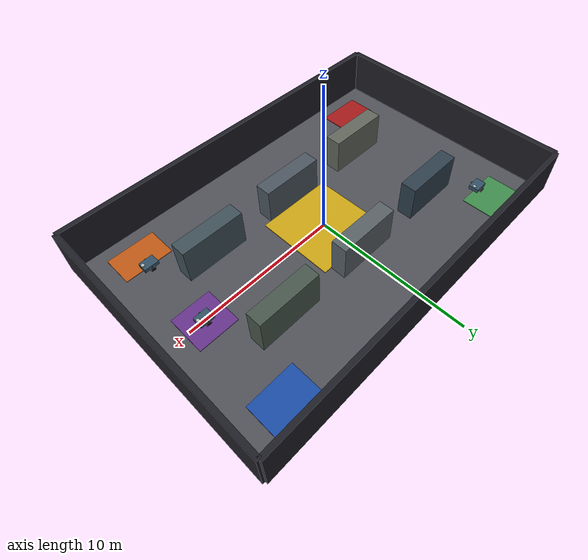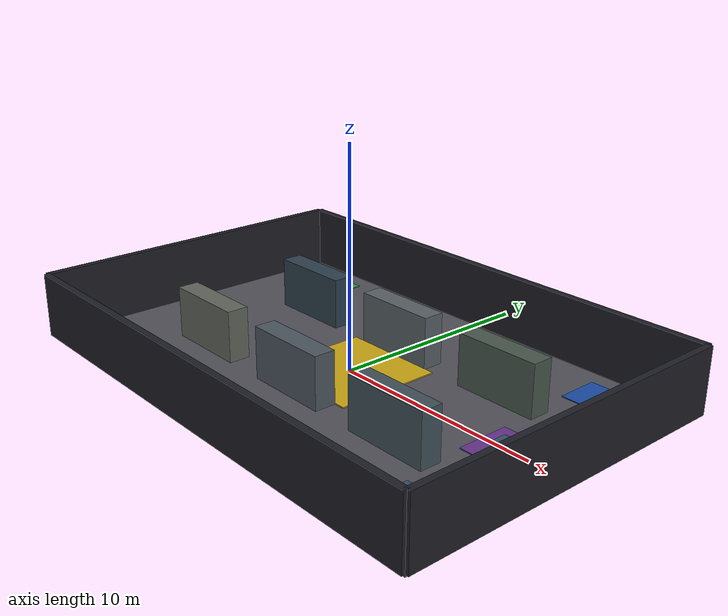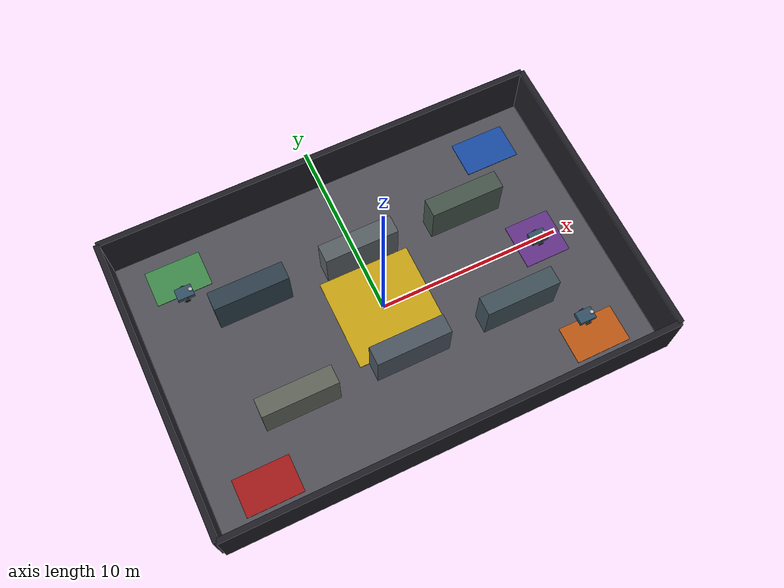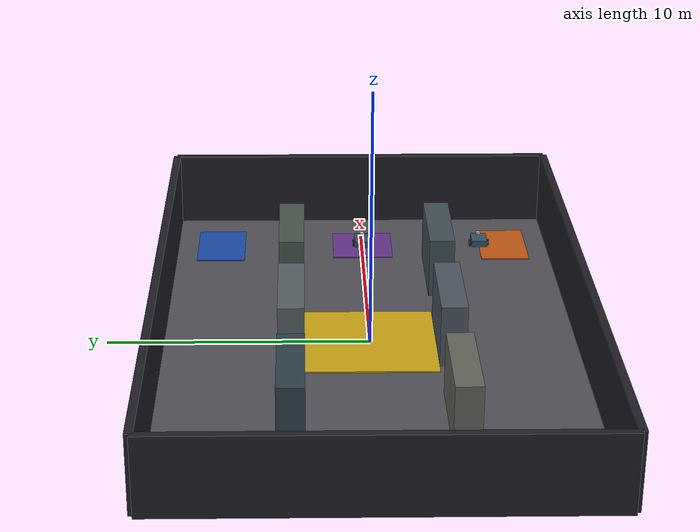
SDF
<?xml version="1.0"?>
<sdf version="1.9">

  <world name="synaids_advanced_warehouse">
    <plugin filename="gz-sim-sensors-system"
            name="gz::sim::systems::Sensors">
    </plugin>

    <gravity>0 0 -9.81</gravity>

    <physics name="default_physics" type="ignored">
      <max_step_size>0.001</max_step_size>
      <real_time_factor>1</real_time_factor>
      <real_time_update_rate>1000</real_time_update_rate>
    </physics>

    <plugin filename="gz-sim-physics-system"
            name="gz::sim::systems::Physics"/>

    <plugin filename="gz-sim-user-commands-system"
            name="gz::sim::systems::UserCommands"/>

    <plugin filename="gz-sim-scene-broadcaster-system"
            name="gz::sim::systems::SceneBroadcaster"/>

    <!-- FLOOR -->

    <model name="warehouse_floor">
      <static>true</static>
      <pose>0 0 -0.05 0 0 0</pose>

      <link name="link">

        <collision name="collision">
          <geometry>
            <box>
              <size>24 16 0.1</size>
            </box>
          </geometry>
        </collision>

        <visual name="visual">
          <geometry>
            <box>
              <size>24 16 0.1</size>
            </box>
          </geometry>

          <material>
            <ambient>0.20 0.20 0.22 1</ambient>
            <diffuse>0.32 0.32 0.35 1</diffuse>
            <specular>0.15 0.15 0.15 1</specular>
          </material>
        </visual>

      </link>
    </model>

    <!-- PERIMETER WALLS -->

    <model name="wall_north">
      <static>true</static>
      <pose>0 8 1.5 0 0 0</pose>
      <link name="link">
        <collision name="collision">
          <geometry>
            <box><size>24 0.3 3</size></box>
          </geometry>
        </collision>
        <visual name="visual">
          <geometry>
            <box><size>24 0.3 3</size></box>
          </geometry>
          <material>
            <ambient>0.08 0.08 0.10 1</ambient>
            <diffuse>0.12 0.12 0.15 1</diffuse>
          </material>
        </visual>
      </link>
    </model>

    <model name="wall_south">
      <static>true</static>
      <pose>0 -8 1.5 0 0 0</pose>
      <link name="link">
        <collision name="collision">
          <geometry>
            <box><size>24 0.3 3</size></box>
          </geometry>
        </collision>
        <visual name="visual">
          <geometry>
            <box><size>24 0.3 3</size></box>
          </geometry>
          <material>
            <ambient>0.08 0.08 0.10 1</ambient>
            <diffuse>0.12 0.12 0.15 1</diffuse>
          </material>
        </visual>
      </link>
    </model>

    <model name="wall_east">
      <static>true</static>
      <pose>12 0 1.5 0 0 0</pose>
      <link name="link">
        <collision name="collision">
          <geometry>
            <box><size>0.3 16 3</size></box>
          </geometry>
        </collision>
        <visual name="visual">
          <geometry>
            <box><size>0.3 16 3</size></box>
          </geometry>
          <material>
            <ambient>0.08 0.08 0.10 1</ambient>
            <diffuse>0.12 0.12 0.15 1</diffuse>
          </material>
        </visual>
      </link>
    </model>

    <model name="wall_west">
      <static>true</static>
      <pose>-12 0 1.5 0 0 0</pose>
      <link name="link">
        <collision name="collision">
          <geometry>
            <box><size>0.3 16 3</size></box>
          </geometry>
        </collision>
        <visual name="visual">
          <geometry>
            <box><size>0.3 16 3</size></box>
          </geometry>
          <material>
            <ambient>0.08 0.08 0.10 1</ambient>
            <diffuse>0.12 0.12 0.15 1</diffuse>
          </material>
        </visual>
      </link>
    </model>

    <!-- SHELF BLOCK 1 -->

    <model name="shelf_1">
      <static>true</static>
      <pose>-6 3 1.2 0 0 0</pose>
      <link name="link">

        <collision name="collision">
          <geometry>
            <box><size>4 1.0 2.4</size></box>
          </geometry>
        </collision>

        <visual name="visual">
          <geometry>
            <box><size>4 1.0 2.4</size></box>
          </geometry>
          <material>
            <ambient>0.08 0.12 0.16 1</ambient>
            <diffuse>0.18 0.25 0.30 1</diffuse>
          </material>
        </visual>

      </link>
    </model>

    <!-- SHELF BLOCK 2 -->

    <model name="shelf_2">
      <static>true</static>
      <pose>0 3 1.2 0 0 0</pose>
      <link name="link">

        <collision name="collision">
          <geometry>
            <box><size>4 1.0 2.4</size></box>
          </geometry>
        </collision>

        <visual name="visual">
          <geometry>
            <box><size>4 1.0 2.4</size></box>
          </geometry>
          <material>
            <ambient>0.18 0.18 0.18 1</ambient>
            <diffuse>0.35 0.38 0.40 1</diffuse>
          </material>
        </visual>

      </link>
    </model>

    <!-- SHELF BLOCK 3 -->

    <model name="shelf_3">
      <static>true</static>
      <pose>6 3 1.2 0 0 0</pose>
      <link name="link">

        <collision name="collision">
          <geometry>
            <box><size>4 1.0 2.4</size></box>
          </geometry>
        </collision>

        <visual name="visual">
          <geometry>
            <box><size>4 1.0 2.4</size></box>
          </geometry>
          <material>
            <ambient>0.12 0.16 0.14 1</ambient>
            <diffuse>0.28 0.34 0.30 1</diffuse>
          </material>
        </visual>

      </link>
    </model>

    <!-- SHELF BLOCK 4 -->

    <model name="shelf_4">
      <static>true</static>
      <pose>-6 -3 1.2 0 0 0</pose>
      <link name="link">

        <collision name="collision">
          <geometry>
            <box><size>4 1.0 2.4</size></box>
          </geometry>
        </collision>

        <visual name="visual">
          <geometry>
            <box><size>4 1.0 2.4</size></box>
          </geometry>
          <material>
            <ambient>0.20 0.20 0.18 1</ambient>
            <diffuse>0.38 0.40 0.36 1</diffuse>
          </material>
        </visual>

      </link>
    </model>

    <!-- SHELF BLOCK 5 -->

    <model name="shelf_5">
      <static>true</static>
      <pose>0 -3 1.2 0 0 0</pose>
      <link name="link">

        <collision name="collision">
          <geometry>
            <box><size>4 1.0 2.4</size></box>
          </geometry>
        </collision>

        <visual name="visual">
          <geometry>
            <box><size>4 1.0 2.4</size></box>
          </geometry>
          <material>
            <ambient>0.16 0.18 0.20 1</ambient>
            <diffuse>0.30 0.34 0.38 1</diffuse>
          </material>
        </visual>

      </link>
    </model>

    <!-- SHELF BLOCK 6 -->

    <model name="shelf_6">
      <static>true</static>
      <pose>6 -3 1.2 0 0 0</pose>
      <link name="link">

        <collision name="collision">
          <geometry>
            <box><size>4 1.0 2.4</size></box>
          </geometry>
        </collision>

        <visual name="visual">
          <geometry>
            <box><size>4 1.0 2.4</size></box>
          </geometry>
          <material>
            <ambient>0.12 0.18 0.20 1</ambient>
            <diffuse>0.25 0.32 0.35 1</diffuse>
          </material>
        </visual>

      </link>
    </model>

    <!-- PICKUP ZONE - GREEN -->

    <model name="pickup_zone">
      <static>true</static>
      <pose>-9 6 0.02 0 0 0</pose>
      <link name="link">
        <visual name="visual">
          <geometry>
            <box><size>3 2 0.04</size></box>
          </geometry>
          <material>
            <ambient>0.08 0.25 0.10 1</ambient>
            <diffuse>0.25 0.55 0.30 1</diffuse>
          </material>
        </visual>
      </link>
    </model>

    <!-- DELIVERY ZONE - ORANGE -->

    <model name="delivery_zone">
      <static>true</static>
      <pose>9 -6 0.02 0 0 0</pose>
      <link name="link">
        <visual name="visual">
          <geometry>
            <box><size>3 2 0.04</size></box>
          </geometry>
          <material>
            <ambient>0.35 0.16 0.03 1</ambient>
            <diffuse>0.75 0.35 0.08 1</diffuse>
          </material>
        </visual>
      </link>
    </model>

    <!-- CHARGING STATION - BLUE -->

    <model name="charging_station">
      <static>true</static>
      <pose>9 6 0.02 0 0 0</pose>
      <link name="link">
        <visual name="visual">
          <geometry>
            <box><size>3 2 0.04</size></box>
          </geometry>
          <material>
            <ambient>0.05 0.15 0.35 1</ambient>
            <diffuse>0.10 0.30 0.65 1</diffuse>
          </material>
        </visual>
      </link>
    </model>

    <!-- RESTRICTED ZONE - RED -->

    <model name="restricted_zone">
      <static>true</static>
      <pose>-9 -6 0.02 0 0 0</pose>
      <link name="link">
        <visual name="visual">
          <geometry>
            <box><size>3 2 0.04</size></box>
          </geometry>
          <material>
            <ambient>0.35 0.04 0.04 1</ambient>
            <diffuse>0.65 0.10 0.10 1</diffuse>
          </material>
        </visual>
      </link>
    </model>

    <!-- CENTRAL SAFETY CROSSING -->

    <model name="central_intersection">
      <static>true</static>
      <pose>0 0 0.025 0 0 0</pose>
      <link name="link">
        <visual name="visual">
          <geometry>
            <box><size>5 5 0.05</size></box>
          </geometry>
          <material>
            <ambient>0.45 0.38 0.03 1</ambient>
            <diffuse>0.80 0.65 0.08 1</diffuse>
          </material>
        </visual>
      </link>
    </model>

    <!-- MAINTENANCE AREA - PURPLE -->

    <model name="maintenance_area">
      <static>true</static>
      <pose>9 0 0.02 0 0 0</pose>
      <link name="link">
        <visual name="visual">
          <geometry>
            <box><size>2.5 2.5 0.04</size></box>
          </geometry>
          <material>
            <ambient>0.18 0.08 0.25 1</ambient>
            <diffuse>0.40 0.20 0.55 1</diffuse>
          </material>
        </visual>
      </link>
    </model>

    <!-- LIGHTING -->

    <light name="warehouse_light_1" type="directional">
      <pose>0 0 10 0 0 0</pose>
      <diffuse>1 1 1 1</diffuse>
      <specular>0.3 0.3 0.3 1</specular>
      <direction>-0.3 0.2 -1</direction>
    </light>

    <light name="warehouse_light_2" type="point">
      <pose>-6 0 6 0 0 0</pose>
      <diffuse>0.8 0.9 1.0 1</diffuse>
      <specular>0.2 0.2 0.2 1</specular>
      <attenuation>
        <range>15</range>
        <constant>0.5</constant>
        <linear>0.01</linear>
        <quadratic>0.001</quadratic>
      </attenuation>
    </light>

    <light name="warehouse_light_3" type="point">
      <pose>6 0 6 0 0 0</pose>
      <diffuse>1.0 0.8 0.6 1</diffuse>
      <specular>0.2 0.2 0.2 1</specular>
      <attenuation>
        <range>15</range>
        <constant>0.5</constant>
        <linear>0.01</linear>
        <quadratic>0.001</quadratic>
      </attenuation>
    </light>

  <model name="R1">

    <pose>-9 5 0.25 0 0 0</pose>

    <!-- Main chassis -->
    <link name="base_link">

      <inertial>
        <mass>12</mass>
        <inertia>
          <ixx>0.5</ixx>
          <iyy>0.5</iyy>
          <izz>0.5</izz>
        </inertia>
      </inertial>

      <collision name="base_collision">
        <geometry>
          <box>
            <size>0.9 0.65 0.25</size>
          </box>
        </geometry>
      </collision>

      <visual name="base_visual">
        <geometry>
          <box>
            <size>0.9 0.65 0.25</size>
          </box>
        </geometry>

        <material>
          <ambient>0.10 0.16 0.20 1</ambient>
          <diffuse>0.20 0.32 0.40 1</diffuse>
        </material>
      </visual>

    </link>

    <!-- Left wheel -->
    <link name="left_wheel">

      <pose>0 0.38 -0.12 1.5708 0 0</pose>

      <inertial>
        <mass>1</mass>
        <inertia>
          <ixx>0.02</ixx>
          <iyy>0.02</iyy>
          <izz>0.02</izz>
        </inertia>
      </inertial>

      <collision name="collision">
        <geometry>
          <cylinder>
            <radius>0.16</radius>
            <length>0.08</length>
          </cylinder>
        </geometry>
      </collision>

      <visual name="visual">
        <geometry>
          <cylinder>
            <radius>0.16</radius>
            <length>0.08</length>
          </cylinder>
        </geometry>

        <material>
          <ambient>0.03 0.03 0.03 1</ambient>
          <diffuse>0.08 0.08 0.08 1</diffuse>
        </material>
      </visual>

    </link>

    <!-- Right wheel -->
    <link name="right_wheel">

      <pose>0 -0.38 -0.12 1.5708 0 0</pose>

      <inertial>
        <mass>1</mass>
        <inertia>
          <ixx>0.02</ixx>
          <iyy>0.02</iyy>
          <izz>0.02</izz>
        </inertia>
      </inertial>

      <collision name="collision">
        <geometry>
          <cylinder>
            <radius>0.16</radius>
            <length>0.08</length>
          </cylinder>
        </geometry>
      </collision>

      <visual name="visual">
        <geometry>
          <cylinder>
            <radius>0.16</radius>
            <length>0.08</length>
          </cylinder>
        </geometry>

        <material>
          <ambient>0.03 0.03 0.03 1</ambient>
          <diffuse>0.08 0.08 0.08 1</diffuse>
        </material>
      </visual>

    </link>

    <!-- Front sensor housing -->
    <link name="sensor">

      <pose>0.35 0 0.18 0 0 0</pose>

      <visual name="visual">
        <geometry>
          <cylinder>
            <radius>0.10</radius>
            <length>0.08</length>
          </cylinder>
        </geometry>

        <material>
          <ambient>0.65 0.65 0.65 1</ambient>
          <diffuse>0.75 0.75 0.75 1</diffuse>
        </material>
      </visual>

    </link>

    <!-- Differential drive -->
    <plugin
      filename="gz-sim-diff-drive-system"
      name="gz::sim::systems::DiffDrive">

      <left_joint>left_wheel_joint</left_joint>
      <right_joint>right_wheel_joint</right_joint>

      <wheel_separation>0.76</wheel_separation>
      <wheel_radius>0.16</wheel_radius>

      <topic>/R1/cmd_vel</topic>
      <odom_topic>/R1/odom</odom_topic>

      <frame_id>odom</frame_id>
      <child_frame_id>base_link</child_frame_id>

    </plugin>

    <!-- Lidar -->
    <link name="lidar">

      <pose>0 0 0.35 0 0 0</pose>

      <sensor name="lidar_sensor" type="gpu_lidar">

        <topic>/R1/scan</topic>

        <update_rate>10</update_rate>

        <lidar>
          <scan>
            <horizontal>
              <samples>360</samples>
              <resolution>1</resolution>
              <min_angle>-3.14159</min_angle>
              <max_angle>3.14159</max_angle>
            </horizontal>
          </scan>

          <range>
            <min>0.12</min>
            <max>12</max>
            <resolution>0.01</resolution>
          </range>
        </lidar>

      </sensor>

    </link>

    <!-- Wheel joints -->
    <joint name="left_wheel_joint" type="revolute">
      <parent>base_link</parent>
      <child>left_wheel</child>
      <axis>
        <xyz>0 1 0</xyz>
      </axis>
    </joint>

    <joint name="right_wheel_joint" type="revolute">
      <parent>base_link</parent>
      <child>right_wheel</child>
      <axis>
        <xyz>0 1 0</xyz>
      </axis>
    </joint>

  </model>
<model name="R2">

    <pose>9 0 0.25 0 0 0</pose>

    <!-- Main chassis -->
    <link name="base_link">

      <inertial>
        <mass>12</mass>
        <inertia>
          <ixx>0.5</ixx>
          <iyy>0.5</iyy>
          <izz>0.5</izz>
        </inertia>
      </inertial>

      <collision name="base_collision">
        <geometry>
          <box>
            <size>0.9 0.65 0.25</size>
          </box>
        </geometry>
      </collision>

      <visual name="base_visual">
        <geometry>
          <box>
            <size>0.9 0.65 0.25</size>
          </box>
        </geometry>

        <material>
          <ambient>0.10 0.16 0.20 1</ambient>
          <diffuse>0.20 0.32 0.40 1</diffuse>
        </material>
      </visual>

    </link>

    <!-- Left wheel -->
    <link name="left_wheel">

      <pose>0 0.38 -0.12 1.5708 0 0</pose>

      <inertial>
        <mass>1</mass>
        <inertia>
          <ixx>0.02</ixx>
          <iyy>0.02</iyy>
          <izz>0.02</izz>
        </inertia>
      </inertial>

      <collision name="collision">
        <geometry>
          <cylinder>
            <radius>0.16</radius>
            <length>0.08</length>
          </cylinder>
        </geometry>
      </collision>

      <visual name="visual">
        <geometry>
          <cylinder>
            <radius>0.16</radius>
            <length>0.08</length>
          </cylinder>
        </geometry>

        <material>
          <ambient>0.03 0.03 0.03 1</ambient>
          <diffuse>0.08 0.08 0.08 1</diffuse>
        </material>
      </visual>

    </link>

    <!-- Right wheel -->
    <link name="right_wheel">

      <pose>0 -0.38 -0.12 1.5708 0 0</pose>

      <inertial>
        <mass>1</mass>
        <inertia>
          <ixx>0.02</ixx>
          <iyy>0.02</iyy>
          <izz>0.02</izz>
        </inertia>
      </inertial>

      <collision name="collision">
        <geometry>
          <cylinder>
            <radius>0.16</radius>
            <length>0.08</length>
          </cylinder>
        </geometry>
      </collision>

      <visual name="visual">
        <geometry>
          <cylinder>
            <radius>0.16</radius>
            <length>0.08</length>
          </cylinder>
        </geometry>

        <material>
          <ambient>0.03 0.03 0.03 1</ambient>
          <diffuse>0.08 0.08 0.08 1</diffuse>
        </material>
      </visual>

    </link>

    <!-- Front sensor housing -->
    <link name="sensor">

      <pose>0.35 0 0.18 0 0 0</pose>

      <visual name="visual">
        <geometry>
          <cylinder>
            <radius>0.10</radius>
            <length>0.08</length>
          </cylinder>
        </geometry>

        <material>
          <ambient>0.65 0.65 0.65 1</ambient>
          <diffuse>0.75 0.75 0.75 1</diffuse>
        </material>
      </visual>

    </link>

    <!-- Differential drive -->
    <plugin
      filename="gz-sim-diff-drive-system"
      name="gz::sim::systems::DiffDrive">

      <left_joint>left_wheel_joint</left_joint>
      <right_joint>right_wheel_joint</right_joint>

      <wheel_separation>0.76</wheel_separation>
      <wheel_radius>0.16</wheel_radius>

      <topic>/R2/cmd_vel</topic>
      <odom_topic>/R2/odom</odom_topic>

      <frame_id>odom</frame_id>
      <child_frame_id>base_link</child_frame_id>

    </plugin>

    <!-- Lidar -->
    <link name="lidar">

      <pose>0 0 0.35 0 0 0</pose>

      <sensor name="lidar_sensor" type="gpu_lidar">

        <topic>/R2/scan</topic>

        <update_rate>10</update_rate>

        <lidar>
          <scan>
            <horizontal>
              <samples>360</samples>
              <resolution>1</resolution>
              <min_angle>-3.14159</min_angle>
              <max_angle>3.14159</max_angle>
            </horizontal>
          </scan>

          <range>
            <min>0.12</min>
            <max>12</max>
            <resolution>0.01</resolution>
          </range>
        </lidar>

      </sensor>

    </link>

    <!-- Wheel joints -->
    <joint name="left_wheel_joint" type="revolute">
      <parent>base_link</parent>
      <child>left_wheel</child>
      <axis>
        <xyz>0 1 0</xyz>
      </axis>
    </joint>

    <joint name="right_wheel_joint" type="revolute">
      <parent>base_link</parent>
      <child>right_wheel</child>
      <axis>
        <xyz>0 1 0</xyz>
      </axis>
    </joint>

  </model>
<model name="R3">

    <pose>9 -5 0.25 0 0 0</pose>

    <!-- Main chassis -->
    <link name="base_link">

      <inertial>
        <mass>12</mass>
        <inertia>
          <ixx>0.5</ixx>
          <iyy>0.5</iyy>
          <izz>0.5</izz>
        </inertia>
      </inertial>

      <collision name="base_collision">
        <geometry>
          <box>
            <size>0.9 0.65 0.25</size>
          </box>
        </geometry>
      </collision>

      <visual name="base_visual">
        <geometry>
          <box>
            <size>0.9 0.65 0.25</size>
          </box>
        </geometry>

        <material>
          <ambient>0.10 0.16 0.20 1</ambient>
          <diffuse>0.20 0.32 0.40 1</diffuse>
        </material>
      </visual>

    </link>

    <!-- Left wheel -->
    <link name="left_wheel">

      <pose>0 0.38 -0.12 1.5708 0 0</pose>

      <inertial>
        <mass>1</mass>
        <inertia>
          <ixx>0.02</ixx>
          <iyy>0.02</iyy>
          <izz>0.02</izz>
        </inertia>
      </inertial>

      <collision name="collision">
        <geometry>
          <cylinder>
            <radius>0.16</radius>
            <length>0.08</length>
          </cylinder>
        </geometry>
      </collision>

      <visual name="visual">
        <geometry>
          <cylinder>
            <radius>0.16</radius>
            <length>0.08</length>
          </cylinder>
        </geometry>

        <material>
          <ambient>0.03 0.03 0.03 1</ambient>
          <diffuse>0.08 0.08 0.08 1</diffuse>
        </material>
      </visual>

    </link>

    <!-- Right wheel -->
    <link name="right_wheel">

      <pose>0 -0.38 -0.12 1.5708 0 0</pose>

      <inertial>
        <mass>1</mass>
        <inertia>
          <ixx>0.02</ixx>
          <iyy>0.02</iyy>
          <izz>0.02</izz>
        </inertia>
      </inertial>

      <collision name="collision">
        <geometry>
          <cylinder>
            <radius>0.16</radius>
            <length>0.08</length>
          </cylinder>
        </geometry>
      </collision>

      <visual name="visual">
        <geometry>
          <cylinder>
            <radius>0.16</radius>
            <length>0.08</length>
          </cylinder>
        </geometry>

        <material>
          <ambient>0.03 0.03 0.03 1</ambient>
          <diffuse>0.08 0.08 0.08 1</diffuse>
        </material>
      </visual>

    </link>

    <!-- Front sensor housing -->
    <link name="sensor">

      <pose>0.35 0 0.18 0 0 0</pose>

      <visual name="visual">
        <geometry>
          <cylinder>
            <radius>0.10</radius>
            <length>0.08</length>
          </cylinder>
        </geometry>

        <material>
          <ambient>0.65 0.65 0.65 1</ambient>
          <diffuse>0.75 0.75 0.75 1</diffuse>
        </material>
      </visual>

    </link>

    <!-- Differential drive -->
    <plugin
      filename="gz-sim-diff-drive-system"
      name="gz::sim::systems::DiffDrive">

      <left_joint>left_wheel_joint</left_joint>
      <right_joint>right_wheel_joint</right_joint>

      <wheel_separation>0.76</wheel_separation>
      <wheel_radius>0.16</wheel_radius>

      <topic>/R3/cmd_vel</topic>
      <odom_topic>/R3/odom</odom_topic>

      <frame_id>odom</frame_id>
      <child_frame_id>base_link</child_frame_id>

    </plugin>

    <!-- Lidar -->
    <link name="lidar">

      <pose>0 0 0.35 0 0 0</pose>

      <sensor name="lidar_sensor" type="gpu_lidar">

        <topic>/R3/scan</topic>

        <update_rate>10</update_rate>

        <lidar>
          <scan>
            <horizontal>
              <samples>360</samples>
              <resolution>1</resolution>
              <min_angle>-3.14159</min_angle>
              <max_angle>3.14159</max_angle>
            </horizontal>
          </scan>

          <range>
            <min>0.12</min>
            <max>12</max>
            <resolution>0.01</resolution>
          </range>
        </lidar>

      </sensor>

    </link>

    <!-- Wheel joints -->
    <joint name="left_wheel_joint" type="revolute">
      <parent>base_link</parent>
      <child>left_wheel</child>
      <axis>
        <xyz>0 1 0</xyz>
      </axis>
    </joint>

    <joint name="right_wheel_joint" type="revolute">
      <parent>base_link</parent>
      <child>right_wheel</child>
      <axis>
        <xyz>0 1 0</xyz>
      </axis>
    </joint>

  </model>
</world>
</sdf>
